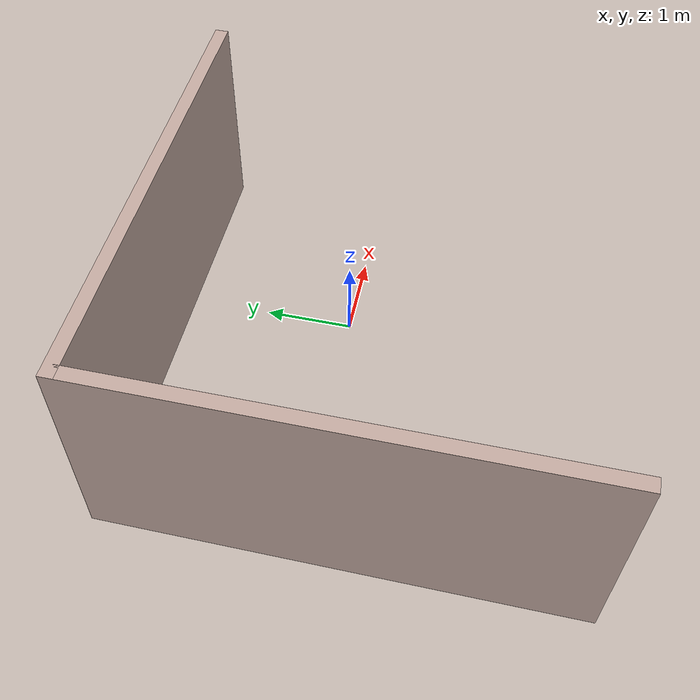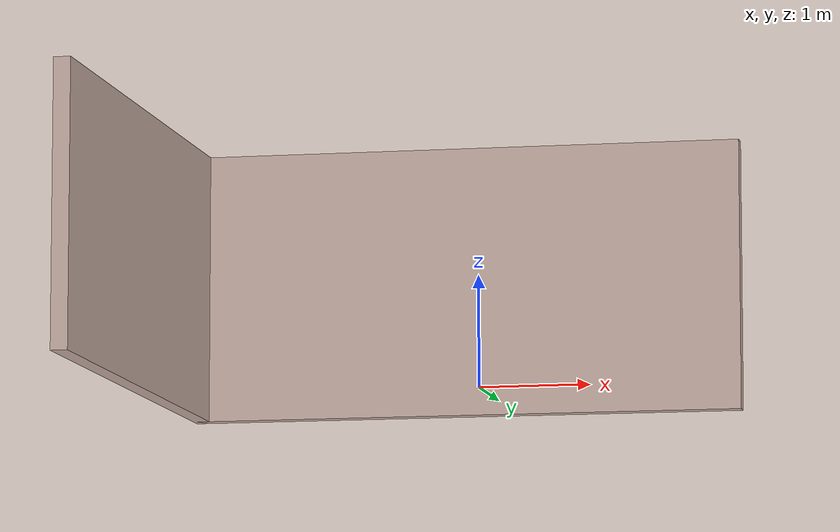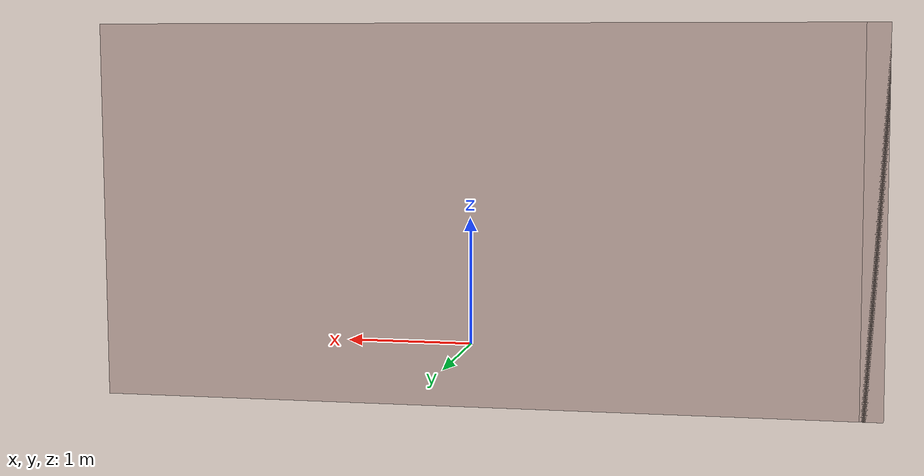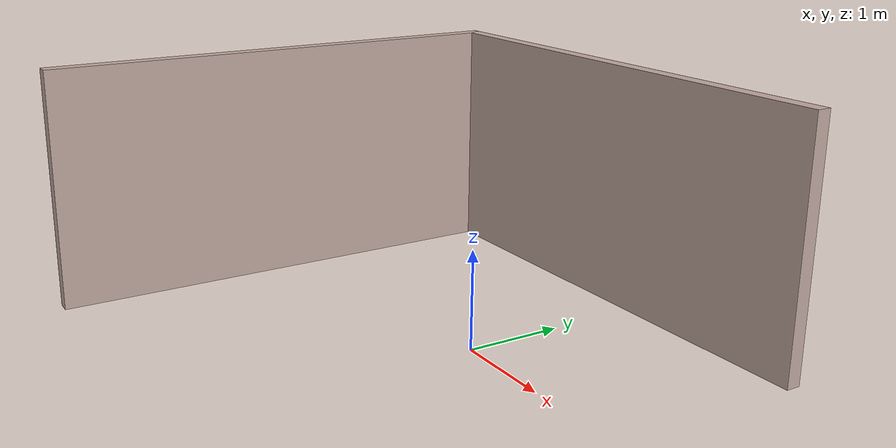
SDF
<?xml version='1.0'?>
<sdf version='1.6'>
  <model name='plan'>
    <pose frame=''>-0.5 -0.5 0 0 -0 0</pose>
    <link name='Wall_10'>
      <collision name='Wall_10_Collision'>
        <geometry>
          <box>
            <size>5.15 0.15 2.5</size>
          </box>
        </geometry>
        <pose frame=''>0 0 1.25 0 -0 0</pose>
      </collision>
      <visual name='Wall_10_Visual'>
        <pose frame=''>0 0 1.25 0 -0 0</pose>
        <geometry>
          <box>
            <size>5.15 0.15 2.5</size>
          </box>
        </geometry>
        <material>
          <script>
            <uri>file://media/materials/scripts/gazebo.material</uri>
            <name>Gazebo/Grey</name>
          </script>
          <ambient>0.760784 0.662745 0.627451 1</ambient>
        </material>
        <meta>
          <layer>0</layer>
        </meta>
      </visual>
      <pose frame=''>0 2.5 0 0 -0 0</pose>
    </link>
    <link name='Wall_9'>
      <collision name='Wall_9_Collision'>
        <geometry>
          <box>
            <size>5.15 0.15 2.5</size>
          </box>
        </geometry>
        <pose frame=''>0 0 1.25 0 -0 0</pose>
      </collision>
      <visual name='Wall_9_Visual'>
        <pose frame=''>0 0 1.25 0 -0 0</pose>
        <geometry>
          <box>
            <size>5.15 0.15 2.5</size>
          </box>
        </geometry>
        <material>
          <script>
            <uri>file://media/materials/scripts/gazebo.material</uri>
            <name>Gazebo/Grey</name>
          </script>
          <ambient>0.760784 0.662745 0.627451 1</ambient>
        </material>
        <meta>
          <layer>0</layer>
        </meta>
      </visual>
      <pose frame=''>-2.5 0 0 0 -0 1.5708</pose>
    </link>
    <static>1</static>
  </model>
</sdf>
